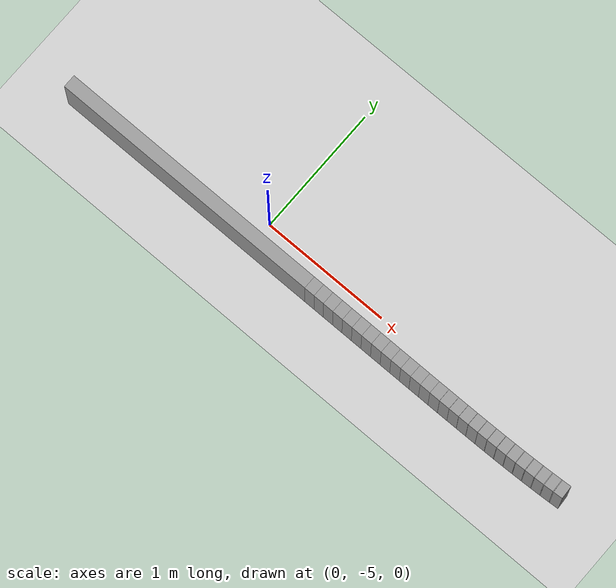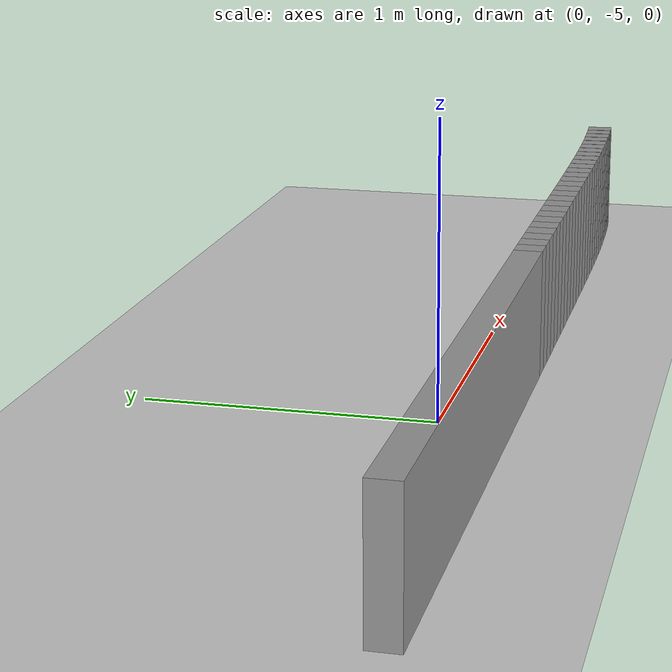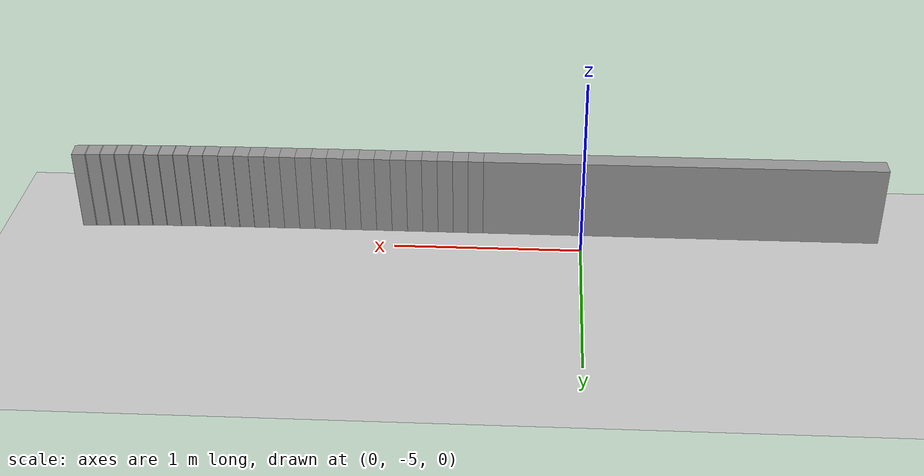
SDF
<sdf version="1.6">
 <world name="default">
  <include><uri>model://ground_plane</uri></include>
  <include><uri>model://sun</uri></include>
  <model name="wall_717_inward">
   <static>true</static>
   <link name="link">
    <collision name="collision">
     <geometry><box><size>2.1352896110480146 0.1 0.45</size></box></geometry>
    </collision>
    <visual name="visual">
     <geometry><box><size>2.1352896110480146 0.1 0.45</size></box></geometry>
     <material>
      <script><uri>file://media/materials/scripts/gazebo.material</uri><name>Gazebo/Gray</name></script>
     </material>
    </visual>
   </link>
   <pose>-0.5383849100530034 -5.199999999994841 0.225 0 0 4.8317008006108185e-12</pose>
  </model>
  <model name="wall_718_inward">
   <static>true</static>
   <link name="link">
    <collision name="collision">
     <geometry><box><size>0.08150690225064285 0.1 0.45</size></box></geometry>
    </collision>
    <visual name="visual">
     <geometry><box><size>0.08150690225064285 0.1 0.45</size></box></geometry>
     <material>
      <script><uri>file://media/materials/scripts/gazebo.material</uri><name>Gazebo/Gray</name></script>
     </material>
    </visual>
   </link>
   <pose>0.5700133465956246 -5.199999760985725 0.225 0 0 5.864631104155801e-06</pose>
  </model>
  <model name="wall_719_inward">
   <static>true</static>
   <link name="link">
    <collision name="collision">
     <geometry><box><size>0.08224562813483335 0.1 0.45</size></box></geometry>
    </collision>
    <visual name="visual">
     <geometry><box><size>0.08224562813483335 0.1 0.45</size></box></geometry>
     <material>
      <script><uri>file://media/materials/scripts/gazebo.material</uri><name>Gazebo/Gray</name></script>
     </material>
    </visual>
   </link>
   <pose>0.651889611785528 -5.199999103040097 0.225 0 0 1.0187573010162549e-05</pose>
  </model>
  <model name="wall_720_inward">
   <static>true</static>
   <link name="link">
    <collision name="collision">
     <geometry><box><size>0.08293248944698516 0.1 0.45</size></box></geometry>
    </collision>
    <visual name="visual">
     <geometry><box><size>0.08293248944698516 0.1 0.45</size></box></geometry>
     <material>
      <script><uri>file://media/materials/scripts/gazebo.material</uri><name>Gazebo/Gray</name></script>
     </material>
    </visual>
   </link>
   <pose>0.7344786705680596 -5.19999796451984 0.225 0 0 1.7353357936628797e-05</pose>
  </model>
  <model name="wall_721_inward">
   <static>true</static>
   <link name="link">
    <collision name="collision">
     <geometry><box><size>0.08354469651744041 0.1 0.45</size></box></geometry>
    </collision>
    <visual name="visual">
     <geometry><box><size>0.08354469651744041 0.1 0.45</size></box></geometry>
     <material>
      <script><uri>file://media/materials/scripts/gazebo.material</uri><name>Gazebo/Gray</name></script>
     </material>
    </visual>
   </link>
   <pose>0.8177172635188652 -5.19999579501599 0.225 0 0 3.4710168875036694e-05</pose>
  </model>
  <model name="wall_722_inward">
   <static>true</static>
   <link name="link">
    <collision name="collision">
     <geometry><box><size>0.08407331551593221 0.1 0.45</size></box></geometry>
    </collision>
    <visual name="visual">
     <geometry><box><size>0.08407331551593221 0.1 0.45</size></box></geometry>
     <material>
      <script><uri>file://media/materials/scripts/gazebo.material</uri><name>Gazebo/Gray</name></script>
     </material>
    </visual>
   </link>
   <pose>0.9015262694409774 -5.19999192939572 0.225 0 0 5.746639098083267e-05</pose>
  </model>
  <model name="wall_723_inward">
   <static>true</static>
   <link name="link">
    <collision name="collision">
     <geometry><box><size>0.0845064443133979 0.1 0.45</size></box></geometry>
    </collision>
    <visual name="visual">
     <geometry><box><size>0.0845064443133979 0.1 0.45</size></box></geometry>
     <material>
      <script><uri>file://media/materials/scripts/gazebo.material</uri><name>Gazebo/Gray</name></script>
     </material>
    </visual>
   </link>
   <pose>0.9858161491019459 -5.199985567392709 0.225 0 0 9.339661703674083e-05</pose>
  </model>
  <model name="wall_724_inward">
   <static>true</static>
   <link name="link">
    <collision name="collision">
     <geometry><box><size>0.08481367406165795 0.1 0.45</size></box></geometry>
    </collision>
    <visual name="visual">
     <geometry><box><size>0.08481367406165795 0.1 0.45</size></box></geometry>
     <material>
      <script><uri>file://media/materials/scripts/gazebo.material</uri><name>Gazebo/Gray</name></script>
     </material>
    </visual>
   </link>
   <pose>1.0704762075603522 -5.199974823325939 0.225 0 0 0.000160298651623622</pose>
  </model>
  <model name="wall_725_inward">
   <static>true</static>
   <link name="link">
    <collision name="collision">
     <geometry><box><size>0.08499550991341713 0.1 0.45</size></box></geometry>
    </collision>
    <visual name="visual">
     <geometry><box><size>0.08499550991341713 0.1 0.45</size></box></geometry>
     <material>
      <script><uri>file://media/materials/scripts/gazebo.material</uri><name>Gazebo/Gray</name></script>
     </material>
    </visual>
   </link>
   <pose>1.1553807976404529 -5.1999572638310205 0.225 0 0 0.00025323070072710147</pose>
  </model>
  <model name="wall_726_inward">
   <static>true</static>
   <link name="link">
    <collision name="collision">
     <geometry><box><size>0.08504258733505642 0.1 0.45</size></box></geometry>
    </collision>
    <visual name="visual">
     <geometry><box><size>0.08504258733505642 0.1 0.45</size></box></geometry>
     <material>
      <script><uri>file://media/materials/scripts/gazebo.material</uri><name>Gazebo/Gray</name></script>
     </material>
    </visual>
   </link>
   <pose>1.2403998416145088 -5.19992978132046 0.225 0 0 0.0003932329756907558</pose>
  </model>
  <model name="wall_727_inward">
   <static>true</static>
   <link name="link">
    <collision name="collision">
     <geometry><box><size>0.08494913931817996 0.1 0.45</size></box></geometry>
    </collision>
    <visual name="visual">
     <geometry><box><size>0.08494913931817996 0.1 0.45</size></box></geometry>
     <material>
      <script><uri>file://media/materials/scripts/gazebo.material</uri><name>Gazebo/Gray</name></script>
     </material>
    </visual>
   </link>
   <pose>1.325395693856269 -5.199887323957604 0.225 0 0 0.0006059293885586007</pose>
  </model>
  <model name="wall_728_inward">
   <static>true</static>
   <link name="link">
    <collision name="collision">
     <geometry><box><size>0.08472836055951102 0.1 0.45</size></box></geometry>
    </collision>
    <visual name="visual">
     <geometry><box><size>0.08472836055951102 0.1 0.45</size></box></geometry>
     <material>
      <script><uri>file://media/materials/scripts/gazebo.material</uri><name>Gazebo/Gray</name></script>
     </material>
    </visual>
   </link>
   <pose>1.4102344184229842 -5.199822998664635 0.225 0 0 0.0009108805977921908</pose>
  </model>
  <model name="wall_729_inward">
   <static>true</static>
   <link name="link">
    <collision name="collision">
     <geometry><box><size>0.08439352538333506 0.1 0.45</size></box></geometry>
    </collision>
    <visual name="visual">
     <geometry><box><size>0.08439352538333506 0.1 0.45</size></box></geometry>
     <material>
      <script><uri>file://media/materials/scripts/gazebo.material</uri><name>Gazebo/Gray</name></script>
     </material>
    </visual>
   </link>
   <pose>1.4947953055611314 -5.199727587765626 0.225 0 0 0.0013466012090608528</pose>
  </model>
  <model name="wall_730_inward">
   <static>true</static>
   <link name="link">
    <collision name="collision">
     <geometry><box><size>0.08396516919040102 0.1 0.45</size></box></geometry>
    </collision>
    <visual name="visual">
     <geometry><box><size>0.08396516919040102 0.1 0.45</size></box></geometry>
     <material>
      <script><uri>file://media/materials/scripts/gazebo.material</uri><name>Gazebo/Gray</name></script>
     </material>
    </visual>
   </link>
   <pose>1.5789745341382324 -5.199588576130379 0.225 0 0 0.001957704463715049</pose>
  </model>
  <model name="wall_731_inward">
   <static>true</static>
   <link name="link">
    <collision name="collision">
     <geometry><box><size>0.08279011647360333 0.1 0.45</size></box></geometry>
    </collision>
    <visual name="visual">
     <geometry><box><size>0.08279011647360333 0.1 0.45</size></box></geometry>
     <material>
      <script><uri>file://media/materials/scripts/gazebo.material</uri><name>Gazebo/Gray</name></script>
     </material>
    </visual>
   </link>
   <pose>1.6623519349370066 -5.1993907261650225 0.225 0 0 0.002794069630863372</pose>
  </model>
  <model name="wall_732_inward">
   <static>true</static>
   <link name="link">
    <collision name="collision">
     <geometry><box><size>0.0006789891974918958 0.1 0.45</size></box></geometry>
    </collision>
    <visual name="visual">
     <geometry><box><size>0.0006789891974918958 0.1 0.45</size></box></geometry>
     <material>
      <script><uri>file://media/materials/scripts/gazebo.material</uri><name>Gazebo/Gray</name></script>
     </material>
    </visual>
   </link>
   <pose>1.704086324274413 -5.199273924976709 0.225 0 0 0.0033598939916097527</pose>
  </model>
  <model name="wall_733_inward">
   <static>true</static>
   <link name="link">
    <collision name="collision">
     <geometry><box><size>0.08203314235643076 0.1 0.45</size></box></geometry>
    </collision>
    <visual name="visual">
     <geometry><box><size>0.08203314235643076 0.1 0.45</size></box></geometry>
     <material>
      <script><uri>file://media/materials/scripts/gazebo.material</uri><name>Gazebo/Gray</name></script>
     </material>
    </visual>
   </link>
   <pose>1.7454420720769084 -5.199111765220296 0.225 0 0 0.003925718353733888</pose>
  </model>
  <model name="wall_734_inward">
   <static>true</static>
   <link name="link">
    <collision name="collision">
     <geometry><box><size>0.0009050227051833871 0.1 0.45</size></box></geometry>
    </collision>
    <visual name="visual">
     <geometry><box><size>0.0009050227051833871 0.1 0.45</size></box></geometry>
     <material>
      <script><uri>file://media/materials/scripts/gazebo.material</uri><name>Gazebo/Gray</name></script>
     </material>
    </visual>
   </link>
   <pose>1.7869108335941757 -5.198948628425636 0.225 0 0 0.004679904013306688</pose>
  </model>
  <model name="wall_735_inward">
   <static>true</static>
   <link name="link">
    <collision name="collision">
     <geometry><box><size>0.08121366193052942 0.1 0.45</size></box></geometry>
    </collision>
    <visual name="visual">
     <geometry><box><size>0.08121366193052942 0.1 0.45</size></box></geometry>
     <material>
      <script><uri>file://media/materials/scripts/gazebo.material</uri><name>Gazebo/Gray</name></script>
     </material>
    </visual>
   </link>
   <pose>1.8279695714119102 -5.198725850648903 0.225 0 0 0.0054340896720321075</pose>
  </model>
  <model name="wall_736_inward">
   <static>true</static>
   <link name="link">
    <collision name="collision">
     <geometry><box><size>0.0011693234008075097 0.1 0.45</size></box></geometry>
    </collision>
    <visual name="visual">
     <geometry><box><size>0.0011693234008075097 0.1 0.45</size></box></geometry>
     <material>
      <script><uri>file://media/materials/scripts/gazebo.material</uri><name>Gazebo/Gray</name></script>
     </material>
    </visual>
   </link>
   <pose>1.869160452527032 -5.198501443780077 0.225 0 0 0.006408525993695619</pose>
  </model>
  <model name="wall_737_inward">
   <static>true</static>
   <link name="link">
    <collision name="collision">
     <geometry><box><size>0.08035068596402173 0.1 0.45</size></box></geometry>
    </collision>
    <visual name="visual">
     <geometry><box><size>0.08035068596402173 0.1 0.45</size></box></geometry>
     <material>
      <script><uri>file://media/materials/scripts/gazebo.material</uri><name>Gazebo/Gray</name></script>
     </material>
    </visual>
   </link>
   <pose>1.9099193502672054 -5.198201086637415 0.225 0 0 0.007382962315128966</pose>
  </model>
  <model name="wall_738_inward">
   <static>true</static>
   <link name="link">
    <collision name="collision">
     <geometry><box><size>0.0014909016464746206 0.1 0.45</size></box></geometry>
    </collision>
    <visual name="visual">
     <geometry><box><size>0.0014909016464746206 0.1 0.45</size></box></geometry>
     <material>
      <script><uri>file://media/materials/scripts/gazebo.material</uri><name>Gazebo/Gray</name></script>
     </material>
    </visual>
   </link>
   <pose>1.950839021406415 -5.197898046571414 0.225 0 0 0.008625380673497827</pose>
  </model>
  <model name="wall_739_inward">
   <static>true</static>
   <link name="link">
    <collision name="collision">
     <geometry><box><size>0.07945895165425244 0.1 0.45</size></box></geometry>
    </collision>
    <visual name="visual">
     <geometry><box><size>0.07945895165425244 0.1 0.45</size></box></geometry>
     <material>
      <script><uri>file://media/materials/scripts/gazebo.material</uri><name>Gazebo/Gray</name></script>
     </material>
    </visual>
   </link>
   <pose>1.9913119860447046 -5.197499580733304 0.225 0 0 0.009867799031853794</pose>
  </model>
  <model name="wall_740_inward">
   <static>true</static>
   <link name="link">
    <collision name="collision">
     <geometry><box><size>0.0018565385131323255 0.1 0.45</size></box></geometry>
    </collision>
    <visual name="visual">
     <geometry><box><size>0.0018565385131323255 0.1 0.45</size></box></geometry>
     <material>
      <script><uri>file://media/materials/scripts/gazebo.material</uri><name>Gazebo/Gray</name></script>
     </material>
    </visual>
   </link>
   <pose>2.0319677363696567 -5.197096948727972 0.225 0 0 0.011414915076336667</pose>
  </model>
  <model name="wall_741_inward">
   <static>true</static>
   <link name="link">
    <collision name="collision">
     <geometry><box><size>0.07855155170626471 0.1 0.45</size></box></geometry>
    </collision>
    <visual name="visual">
     <geometry><box><size>0.07855155170626471 0.1 0.45</size></box></geometry>
     <material>
      <script><uri>file://media/materials/scripts/gazebo.material</uri><name>Gazebo/Gray</name></script>
     </material>
    </visual>
   </link>
   <pose>2.0721684216043057 -5.19657727327014 0.225 0 0 0.01296203112145001</pose>
  </model>
  <model name="wall_742_inward">
   <static>true</static>
   <link name="link">
    <collision name="collision">
     <geometry><box><size>0.0022689539086393376 0.1 0.45</size></box></geometry>
    </collision>
    <visual name="visual">
     <geometry><box><size>0.0022689539086393376 0.1 0.45</size></box></geometry>
     <material>
      <script><uri>file://media/materials/scripts/gazebo.material</uri><name>Gazebo/Gray</name></script>
     </material>
    </visual>
   </link>
   <pose>2.1125752498787462 -5.196051344126333 0.225 0 0 0.014852827172090629</pose>
  </model>
  <model name="wall_743_inward">
   <static>true</static>
   <link name="link">
    <collision name="collision">
     <geometry><box><size>0.07763400458796615 0.1 0.45</size></box></geometry>
    </collision>
    <visual name="visual">
     <geometry><box><size>0.07763400458796615 0.1 0.45</size></box></geometry>
     <material>
      <script><uri>file://media/materials/scripts/gazebo.material</uri><name>Gazebo/Gray</name></script>
     </material>
    </visual>
   </link>
   <pose>2.1525211629676773 -5.195384587662478 0.225 0 0 0.016743623222449825</pose>
  </model>
  <model name="wall_744_inward">
   <static>true</static>
   <link name="link">
    <collision name="collision">
     <geometry><box><size>0.002721590813213859 0.1 0.45</size></box></geometry>
    </collision>
    <visual name="visual">
     <geometry><box><size>0.002721590813213859 0.1 0.45</size></box></geometry>
     <material>
      <script><uri>file://media/materials/scripts/gazebo.material</uri><name>Gazebo/Gray</name></script>
     </material>
    </visual>
   </link>
   <pose>2.1926932737264484 -5.19470881140588 0.225 0 0 0.019011617511056202</pose>
  </model>
  <model name="wall_745_inward">
   <static>true</static>
   <link name="link">
    <collision name="collision">
     <geometry><box><size>0.0767088186305378 0.1 0.45</size></box></geometry>
    </collision>
    <visual name="visual">
     <geometry><box><size>0.0767088186305378 0.1 0.45</size></box></geometry>
     <material>
      <script><uri>file://media/materials/scripts/gazebo.material</uri><name>Gazebo/Gray</name></script>
     </material>
    </visual>
   </link>
   <pose>2.232399549001544 -5.19386683669648 0.225 0 0 0.021279611799840014</pose>
  </model>
  <model name="wall_746_inward">
   <static>true</static>
   <link name="link">
    <collision name="collision">
     <geometry><box><size>0.0031937441633399025 0.1 0.45</size></box></geometry>
    </collision>
    <visual name="visual">
     <geometry><box><size>0.0031937441633399025 0.1 0.45</size></box></geometry>
     <material>
      <script><uri>file://media/materials/scripts/gazebo.material</uri><name>Gazebo/Gray</name></script>
     </material>
    </visual>
   </link>
   <pose>2.2723416892468054 -5.19301250417872 0.225 0 0 0.02394106841125709</pose>
  </model>
  <model name="wall_747_inward">
   <static>true</static>
   <link name="link">
    <collision name="collision">
     <geometry><box><size>0.07577600826599167 0.1 0.45</size></box></geometry>
    </collision>
    <visual name="visual">
     <geometry><box><size>0.07577600826599167 0.1 0.45</size></box></geometry>
     <material>
      <script><uri>file://media/materials/scripts/gazebo.material</uri><name>Gazebo/Gray</name></script>
     </material>
    </visual>
   </link>
   <pose>2.31181270206758 -5.191966479307614 0.225 0 0 0.026602525022748062</pose>
  </model>
  <model name="wall_748_inward">
   <static>true</static>
   <link name="link">
    <collision name="collision">
     <geometry><box><size>0.003676857671634035 0.1 0.45</size></box></geometry>
    </collision>
    <visual name="visual">
     <geometry><box><size>0.003676857671634035 0.1 0.45</size></box></geometry>
     <material>
      <script><uri>file://media/materials/scripts/gazebo.material</uri><name>Gazebo/Gray</name></script>
     </material>
    </visual>
   </link>
   <pose>2.3515249203173783 -5.190904149715772 0.225 0 0 0.02966657787684439</pose>
  </model>
  <model name="wall_749_inward">
   <static>true</static>
   <link name="link">
    <collision name="collision">
     <geometry><box><size>0.0748328953535999 0.1 0.45</size></box></geometry>
    </collision>
    <visual name="visual">
     <geometry><box><size>0.0748328953535999 0.1 0.45</size></box></geometry>
     <material>
      <script><uri>file://media/materials/scripts/gazebo.material</uri><name>Gazebo/Gray</name></script>
     </material>
    </visual>
   </link>
   <pose>2.390758947661058 -5.189625172542009 0.225 0 0 0.03273063073100538</pose>
  </model>
  <model name="wall_750_inward">
   <static>true</static>
   <link name="link">
    <collision name="collision">
     <geometry><box><size>0.00415376962814824 0.1 0.45</size></box></geometry>
    </collision>
    <visual name="visual">
     <geometry><box><size>0.00415376962814824 0.1 0.45</size></box></geometry>
     <material>
      <script><uri>file://media/materials/scripts/gazebo.material</uri><name>Gazebo/Gray</name></script>
     </material>
    </visual>
   </link>
   <pose>2.4302308798545997 -5.188325576820898 0.225 0 0 0.036192112333600264</pose>
  </model>
  <model name="wall_751_inward">
   <static>true</static>
   <link name="link">
    <collision name="collision">
     <geometry><box><size>0.0738763840753737 0.1 0.45</size></box></geometry>
    </collision>
    <visual name="visual">
     <geometry><box><size>0.0738763840753737 0.1 0.45</size></box></geometry>
     <material>
      <script><uri>file://media/materials/scripts/gazebo.material</uri><name>Gazebo/Gray</name></script>
     </material>
    </visual>
   </link>
   <pose>2.469215559491148 -5.18678607814242 0.225 0 0 0.03965359393624628</pose>
  </model>
  <model name="wall_752_inward">
   <static>true</static>
   <link name="link">
    <collision name="collision">
     <geometry><box><size>0.004594328018400775 0.1 0.45</size></box></geometry>
    </collision>
    <visual name="visual">
     <geometry><box><size>0.004594328018400775 0.1 0.45</size></box></geometry>
     <material>
      <script><uri>file://media/materials/scripts/gazebo.material</uri><name>Gazebo/Gray</name></script>
     </material>
    </visual>
   </link>
   <pose>2.5084197071130374 -5.185221875608676 0.225 0 0 0.04348220997158673</pose>
  </model>
  <model name="wall_753_inward">
   <static>true</static>
   <link name="link">
    <collision name="collision">
     <geometry><box><size>0.07290474676901065 0.1 0.45</size></box></geometry>
    </collision>
    <visual name="visual">
     <geometry><box><size>0.07290474676901065 0.1 0.45</size></box></geometry>
     <material>
      <script><uri>file://media/materials/scripts/gazebo.material</uri><name>Gazebo/Gray</name></script>
     </material>
    </visual>
   </link>
   <pose>2.547126284897325 -5.183398072709988 0.225 0 0 0.04731082600722361</pose>
  </model>
  <model name="wall_754_inward">
   <static>true</static>
   <link name="link">
    <collision name="collision">
     <geometry><box><size>0.004984062382155073 0.1 0.45</size></box></geometry>
    </collision>
    <visual name="visual">
     <geometry><box><size>0.004984062382155073 0.1 0.45</size></box></geometry>
     <material>
      <script><uri>file://media/materials/scripts/gazebo.material</uri><name>Gazebo/Gray</name></script>
     </material>
    </visual>
   </link>
   <pose>2.5860266017217564 -5.181545930262548 0.225 0 0 0.05146422326726082</pose>
  </model>
  <model name="wall_755_inward">
   <static>true</static>
   <link name="link">
    <collision name="collision">
     <geometry><box><size>0.07191717899960087 0.1 0.45</size></box></geometry>
    </collision>
    <visual name="visual">
     <geometry><box><size>0.07191717899960087 0.1 0.45</size></box></geometry>
     <material>
      <script><uri>file://media/materials/scripts/gazebo.material</uri><name>Gazebo/Gray</name></script>
     </material>
    </visual>
   </link>
   <pose>2.624418321614148 -5.179418836144889 0.225 0 0 0.05561762052714369</pose>
  </model>
  <model name="wall_756_inward">
   <static>true</static>
   <link name="link">
    <collision name="collision">
     <geometry><box><size>0.00529838973032497 0.1 0.45</size></box></geometry>
    </collision>
    <visual name="visual">
     <geometry><box><size>0.00529838973032497 0.1 0.45</size></box></geometry>
     <material>
      <script><uri>file://media/materials/scripts/gazebo.material</uri><name>Gazebo/Gray</name></script>
     </material>
    </visual>
   </link>
   <pose>2.6629657322495364 -5.177260992373649 0.225 0 0 0.06003295964874485</pose>
  </model>
  <model name="wall_757_inward">
   <static>true</static>
   <link name="link">
    <collision name="collision">
     <geometry><box><size>0.07091690422998874 0.1 0.45</size></box></geometry>
    </collision>
    <visual name="visual">
     <geometry><box><size>0.07091690422998874 0.1 0.45</size></box></geometry>
     <material>
      <script><uri>file://media/materials/scripts/gazebo.material</uri><name>Gazebo/Gray</name></script>
     </material>
    </visual>
   </link>
   <pose>2.700994992541851 -5.17481839361886 0.225 0 0 0.06444829877032587</pose>
  </model>
 </world>
</sdf>
